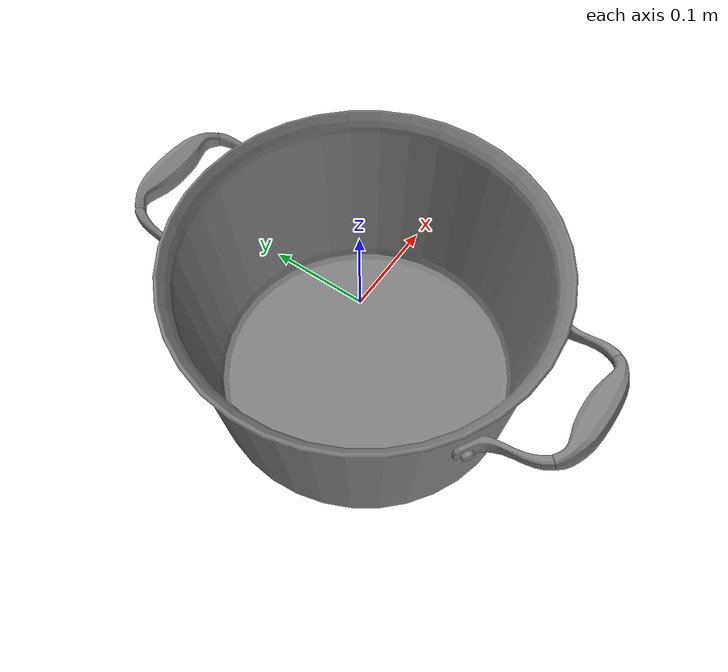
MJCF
<mujoco model="partnet_f8439f99-4d73-47ff-bbb9-e38f54922933">
  <compiler angle="radian" meshdir="textured_objs/"/>

  <default>
    <default class="visual">
      <geom contype="0" conaffinity="0" group="2" type="mesh" density="0"/>
    </default>
    <default class="collision">
      <geom group="3" type="mesh"/>
    </default>
  </default>

  <asset>
    <mesh name="original-4" file="original-4/original-4.obj" scale="0.25 0.25 0.25"/>
    <mesh name="original-4_collision_0" file="original-4/original-4_collision_0.obj" scale="0.25 0.25 0.25"/>
    <mesh name="original-4_collision_1" file="original-4/original-4_collision_1.obj" scale="0.25 0.25 0.25"/>
    <mesh name="original-4_collision_2" file="original-4/original-4_collision_2.obj" scale="0.25 0.25 0.25"/>
    <mesh name="original-4_collision_3" file="original-4/original-4_collision_3.obj" scale="0.25 0.25 0.25"/>
    <mesh name="original-4_collision_4" file="original-4/original-4_collision_4.obj" scale="0.25 0.25 0.25"/>
    <mesh name="original-4_collision_5" file="original-4/original-4_collision_5.obj" scale="0.25 0.25 0.25"/>
    <mesh name="original-4_collision_6" file="original-4/original-4_collision_6.obj" scale="0.25 0.25 0.25"/>
    <mesh name="original-4_collision_7" file="original-4/original-4_collision_7.obj" scale="0.25 0.25 0.25"/>
    <mesh name="original-4_collision_8" file="original-4/original-4_collision_8.obj" scale="0.25 0.25 0.25"/>
    <mesh name="original-4_collision_9" file="original-4/original-4_collision_9.obj" scale="0.25 0.25 0.25"/>
    <mesh name="original-4_collision_10" file="original-4/original-4_collision_10.obj" scale="0.25 0.25 0.25"/>
    <mesh name="original-4_collision_11" file="original-4/original-4_collision_11.obj" scale="0.25 0.25 0.25"/>
    <mesh name="original-4_collision_12" file="original-4/original-4_collision_12.obj" scale="0.25 0.25 0.25"/>
    <mesh name="original-4_collision_13" file="original-4/original-4_collision_13.obj" scale="0.25 0.25 0.25"/>
    <mesh name="original-4_collision_14" file="original-4/original-4_collision_14.obj" scale="0.25 0.25 0.25"/>
    <mesh name="original-4_collision_15" file="original-4/original-4_collision_15.obj" scale="0.25 0.25 0.25"/>
    <mesh name="original-4_collision_16" file="original-4/original-4_collision_16.obj" scale="0.25 0.25 0.25"/>
    <mesh name="original-4_collision_17" file="original-4/original-4_collision_17.obj" scale="0.25 0.25 0.25"/>
    <mesh name="original-4_collision_18" file="original-4/original-4_collision_18.obj" scale="0.25 0.25 0.25"/>
    <mesh name="original-4_collision_19" file="original-4/original-4_collision_19.obj" scale="0.25 0.25 0.25"/>

    <mesh name="original-2" file="original-2.obj" scale="0.25 0.25 0.25"/>
    <mesh name="original-23" file="original-23.obj" scale="0.25 0.25 0.25"/>
    <mesh name="original-16" file="original-16.obj" scale="0.25 0.25 0.25"/>
    <mesh name="original-8" file="original-8.obj" scale="0.25 0.25 0.25"/>
    <mesh name="original-15" file="original-15.obj" scale="0.25 0.25 0.25"/>
    <mesh name="original-7" file="original-7.obj" scale="0.25 0.25 0.25"/>
    <mesh name="original-24" file="original-24.obj" scale="0.25 0.25 0.25"/>
    <mesh name="original-21" file="original-21.obj" scale="0.25 0.25 0.25"/>
    <mesh name="original-3" file="original-3.obj" scale="0.25 0.25 0.25"/>
    <mesh name="original-13" file="original-13.obj" scale="0.25 0.25 0.25"/>
    <mesh name="original-9" file="original-9.obj" scale="0.25 0.25 0.25"/>
    <mesh name="original-5" file="original-5.obj" scale="0.25 0.25 0.25"/>
    <mesh name="original-6" file="original-6.obj" scale="0.25 0.25 0.25"/>
    <mesh name="original-17" file="original-17.obj" scale="0.25 0.25 0.25"/>
    <mesh name="original-12" file="original-12.obj" scale="0.25 0.25 0.25"/>
    <mesh name="original-20" file="original-20.obj" scale="0.25 0.25 0.25"/>
    <mesh name="original-1" file="original-1.obj" scale="0.25 0.25 0.25"/>
    <mesh name="original-10" file="original-10.obj" scale="0.25 0.25 0.25"/>
    <mesh name="original-19" file="original-19.obj" scale="0.25 0.25 0.25"/>
  </asset>

  <worldbody>
    <body name="base">
      <site name="boundary" type="box" size="0.19 0.25 0.12" pos="0 0 -0.025" rgba="0 0 1 0.25" group="3"/>

      <geom mesh="original-4" quat="0.5 0.5 -0.5 -0.5" class="visual"/>
      <geom mesh="original-4_collision_0" quat="0.5 0.5 -0.5 -0.5" rgba="0.5547124505732728 0.28580968996319356 0.04000341162131005 1" class="collision"/>
      <geom mesh="original-4_collision_1" quat="0.5 0.5 -0.5 -0.5" rgba="0.339418589996791 0.4644663483787188 0.3660054538828015 1" class="collision"/>
      <geom mesh="original-4_collision_2" quat="0.5 0.5 -0.5 -0.5" rgba="0.4208024564587779 0.5496273814966395 0.3119813654612984 1" class="collision"/>
      <geom mesh="original-4_collision_3" quat="0.5 0.5 -0.5 -0.5" rgba="0.05300864503671576 0.13556187060659464 0.3257300187928388 1" class="collision"/>
      <geom mesh="original-4_collision_4" quat="0.5 0.5 -0.5 -0.5" rgba="0.18207227089704436 0.8231655721328778 0.07404258016252019 1" class="collision"/>
      <geom mesh="original-4_collision_5" quat="0.5 0.5 -0.5 -0.5" rgba="0.44297170249367934 0.009348434467845168 0.6466610207159441 1" class="collision"/>
      <geom mesh="original-4_collision_6" quat="0.5 0.5 -0.5 -0.5" rgba="0.8532090046334334 0.48421739493158655 0.48397798837563855 1" class="collision"/>
      <geom mesh="original-4_collision_7" quat="0.5 0.5 -0.5 -0.5" rgba="0.8876394878770731 0.7255576523743026 0.2940953938828331 1" class="collision"/>
      <geom mesh="original-4_collision_8" quat="0.5 0.5 -0.5 -0.5" rgba="0.8716015372406988 0.7354138877379617 0.34401180931054565 1" class="collision"/>
      <geom mesh="original-4_collision_9" quat="0.5 0.5 -0.5 -0.5" rgba="0.772621120758354 0.6137300819485588 0.9964289693233314 1" class="collision"/>
      <geom mesh="original-4_collision_10" quat="0.5 0.5 -0.5 -0.5" rgba="0.6378209449729348 0.09684298535401148 0.152763905400225 1" class="collision"/>
      <geom mesh="original-4_collision_11" quat="0.5 0.5 -0.5 -0.5" rgba="0.7452099364898621 0.9215918569800251 0.1412255210847384 1" class="collision"/>
      <geom mesh="original-4_collision_12" quat="0.5 0.5 -0.5 -0.5" rgba="0.14821394352107264 0.4963566241966805 0.07628924594337771 1" class="collision"/>
      <geom mesh="original-4_collision_13" quat="0.5 0.5 -0.5 -0.5" rgba="0.21857091944140195 0.6770051702355617 0.4204507993392824 1" class="collision"/>
      <geom mesh="original-4_collision_14" quat="0.5 0.5 -0.5 -0.5" rgba="0.9764763219485141 0.2654339199341351 0.5567335298667739 1" class="collision"/>
      <geom mesh="original-4_collision_15" quat="0.5 0.5 -0.5 -0.5" rgba="0.0018022979096654623 0.03796711510369044 0.5387983497627966 1" class="collision"/>
      <geom mesh="original-4_collision_16" quat="0.5 0.5 -0.5 -0.5" rgba="0.042176101266040544 0.044837107509896335 0.2122114744114072 1" class="collision"/>
      <geom mesh="original-4_collision_17" quat="0.5 0.5 -0.5 -0.5" rgba="0.2153853992725745 0.9101181088419532 0.934975388100414 1" class="collision"/>
      <geom mesh="original-4_collision_18" quat="0.5 0.5 -0.5 -0.5" rgba="0.6519872529676899 0.6520366399906943 0.5496265570572079 1" class="collision"/>
      <geom mesh="original-4_collision_19" quat="0.5 0.5 -0.5 -0.5" rgba="0.39261366631073147 0.009986774476329341 0.3317480788877575 1" class="collision"/>

      <geom quat="0.5 0.5 -0.5 -0.5" class="visual" mesh="original-3"/>
      <geom quat="0.5 0.5 -0.5 -0.5" class="visual" mesh="original-13"/>
      <geom quat="0.5 0.5 -0.5 -0.5" class="visual" mesh="original-9"/>
      <geom quat="0.5 0.5 -0.5 -0.5" class="visual" mesh="original-5"/>
      <geom quat="0.5 0.5 -0.5 -0.5" class="visual" mesh="original-6"/>
      <geom quat="0.5 0.5 -0.5 -0.5" class="visual" mesh="original-12"/>
      <geom quat="0.5 0.5 -0.5 -0.5" class="visual" mesh="original-20"/>
      <geom quat="0.5 0.5 -0.5 -0.5" class="visual" mesh="original-1"/>
      <geom quat="0.5 0.5 -0.5 -0.5" class="visual" mesh="original-10"/>
      <geom quat="0.5 0.5 -0.5 -0.5" class="visual" mesh="original-19"/>

      <geom type="sphere" size="0.0125" pos="-0.06 0.2225 0.035" class="collision"/>
      <geom type="sphere" size="0.0125" pos="0.06 0.2225 0.035" class="collision"/>

      <geom type="sphere" size="0.0125" pos="-0.06 -0.235 0.035" class="collision"/>
      <geom type="sphere" size="0.0125" pos="0.06 -0.235 0.035" class="collision"/>

      <geom quat="0.5 0.5 -0.5 -0.5" class="collision" friction="1 0.005 0.0001" rgba="0.5547124505732728 0.28580968996319356 0.04000341162131005 1" mesh="original-3"/>
      <geom quat="0.5 0.5 -0.5 -0.5" class="collision" friction="1 0.005 0.0001" rgba="0.339418589996791 0.4644663483787188 0.3660054538828015 1" mesh="original-13"/>
      <geom quat="0.5 0.5 -0.5 -0.5" class="collision" friction="1 0.005 0.0001" rgba="0.4208024564587779 0.5496273814966395 0.3119813654612984 1" mesh="original-9"/>
      <geom quat="0.5 0.5 -0.5 -0.5" class="collision" friction="1 0.005 0.0001" rgba="0.05300864503671576 0.13556187060659464 0.3257300187928388 1" mesh="original-5"/>
      <geom quat="0.5 0.5 -0.5 -0.5" class="collision" friction="1 0.005 0.0001" rgba="0.18207227089704436 0.8231655721328778 0.07404258016252019 1" mesh="original-6"/>
      <geom quat="0.5 0.5 -0.5 -0.5" class="collision" friction="1 0.005 0.0001" rgba="0.8532090046334334 0.48421739493158655 0.48397798837563855 1" mesh="original-12"/>
      <geom quat="0.5 0.5 -0.5 -0.5" class="collision" friction="1 0.005 0.0001" rgba="0.8876394878770731 0.7255576523743026 0.2940953938828331 1" mesh="original-20"/>
      <geom quat="0.5 0.5 -0.5 -0.5" class="collision" friction="1 0.005 0.0001" rgba="0.8716015372406988 0.7354138877379617 0.34401180931054565 1" mesh="original-1"/>
      <geom quat="0.5 0.5 -0.5 -0.5" class="collision" friction="1 0.005 0.0001" rgba="0.772621120758354 0.6137300819485588 0.9964289693233314 1" mesh="original-10"/>
      <geom quat="0.5 0.5 -0.5 -0.5" class="collision" friction="1 0.005 0.0001" rgba="0.6378209449729348 0.09684298535401148 0.152763905400225 1" mesh="original-19"/>

      <site name="interior" type="box" size="0.125 0.125 0.1" pos="0 0 -0.025" rgba="0 1 0 0.25" group="3"/>
    </body>
  </worldbody>
</mujoco>
